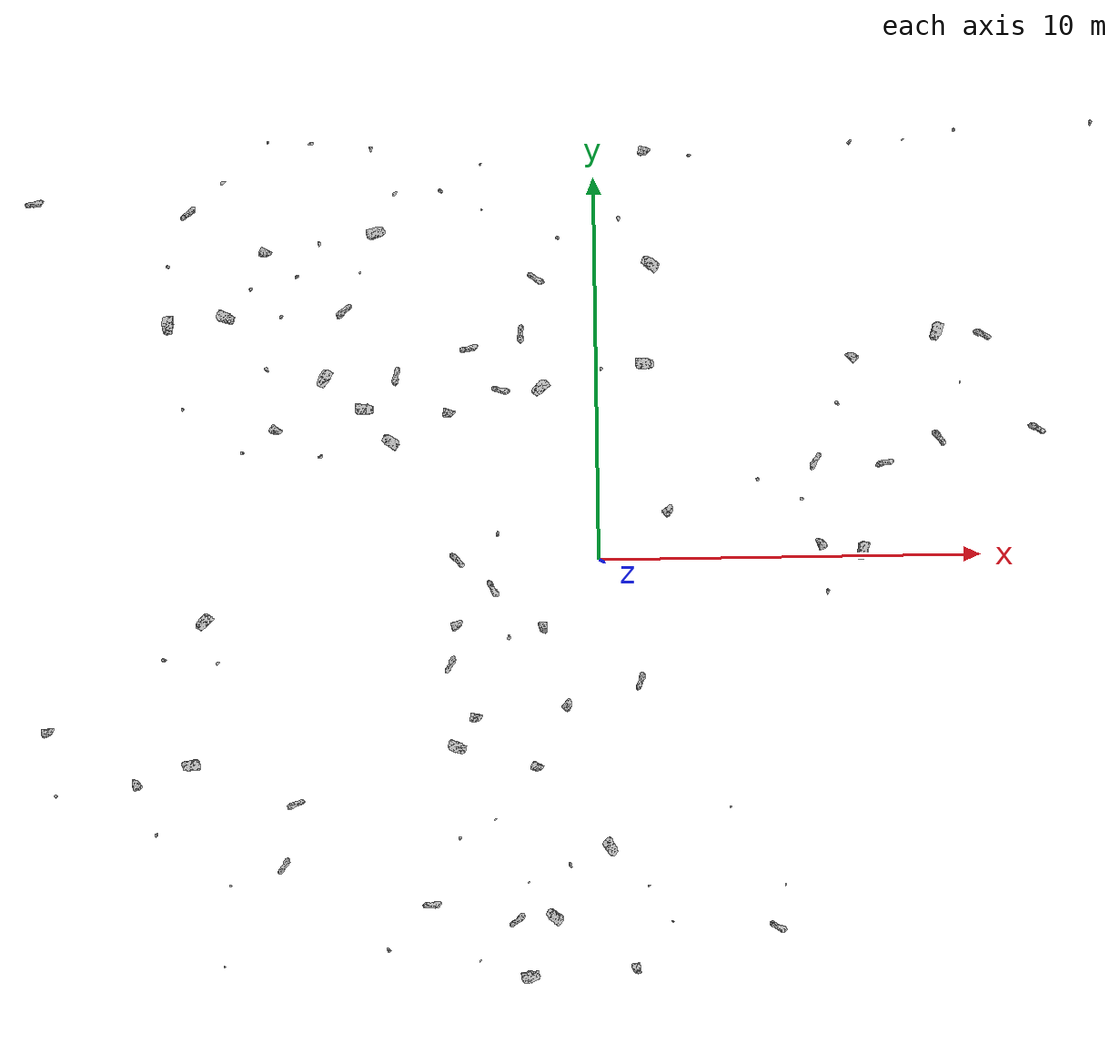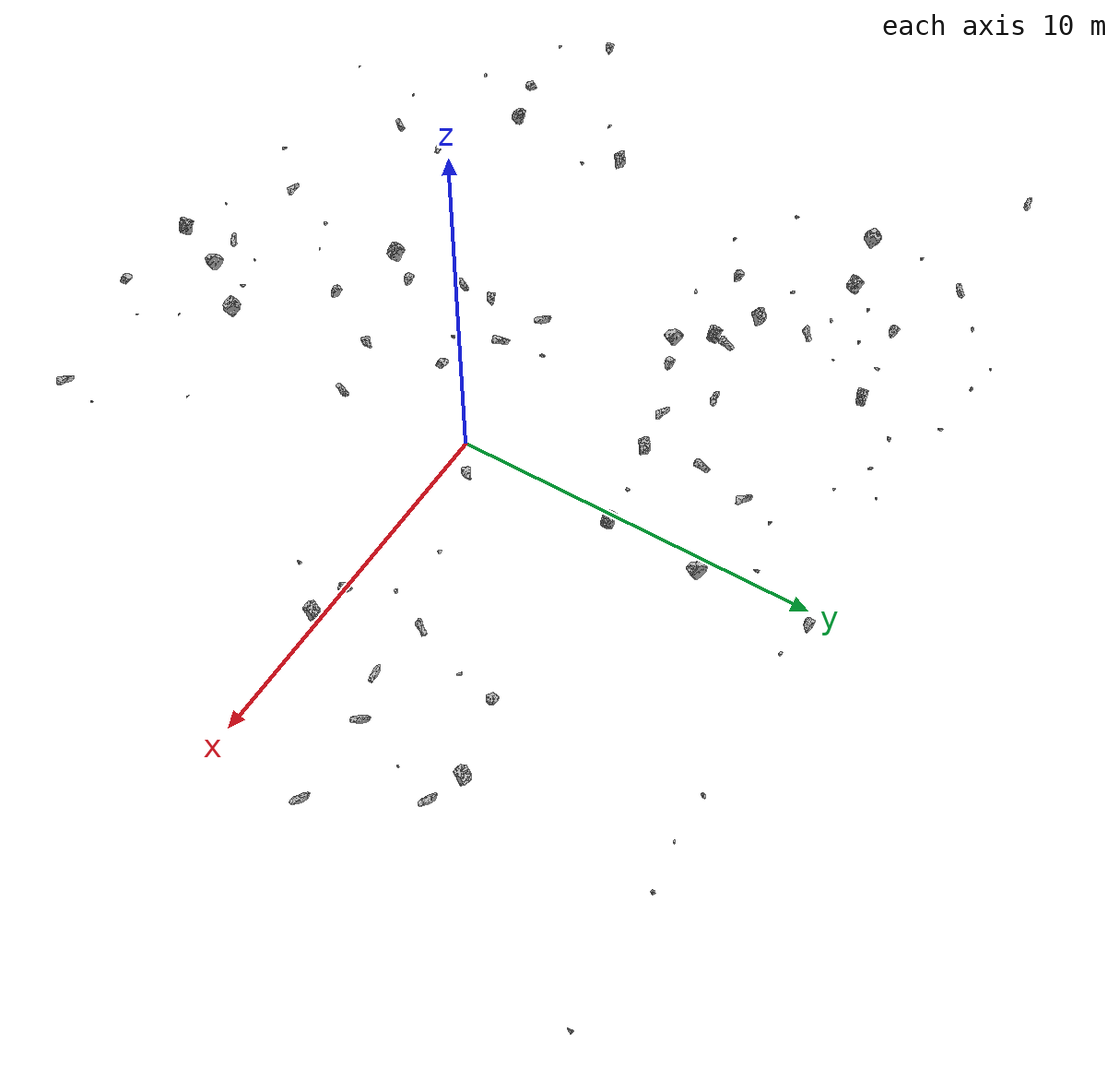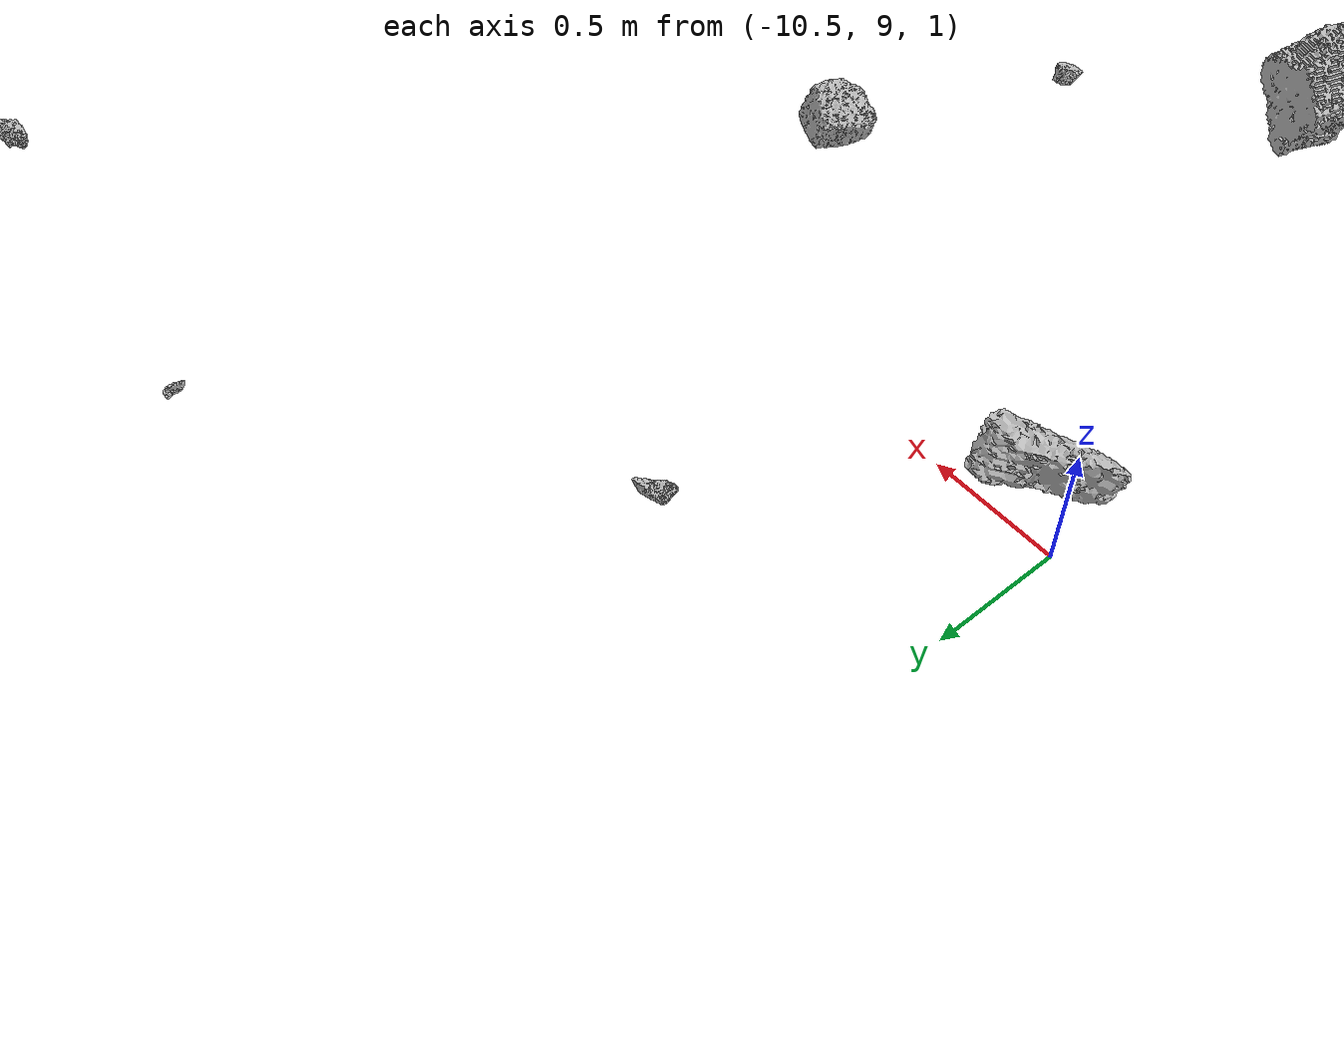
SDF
<sdf version="1.7">
 <world name="marsyard">
  <gravity>0 0 -9.81</gravity>
  <physics name="dart_physics" type="ignored">
   <max_step_size>0.003</max_step_size>
   <real_time_update_rate>333</real_time_update_rate>
   <real_time_factor>1.0</real_time_factor>
  </physics>
  <plugin filename="ignition-gazebo-physics-system" name="ignition::gazebo::systems::Physics"/>
  <plugin filename="ignition-gazebo-user-commands-system" name="ignition::gazebo::systems::UserCommands"/>
  <plugin filename="ignition-gazebo-scene-broadcaster-system" name="ignition::gazebo::systems::SceneBroadcaster"/>
  <plugin filename="ignition-gazebo-contact-system" name="ignition::gazebo::systems::Contact"/>
  <scene>
   <ambient>0.95 0.95 0.95 1</ambient>
   <background>0.70 0.70 0.70 1</background>
   <shadows>false</shadows>
  </scene>
  <light type="directional" name="sun">
   <cast_shadows>false</cast_shadows>
   <pose>0 0 30 0 0 0</pose>
   <diffuse>1 1 1 1</diffuse>
   <specular>0.15 0.15 0.15 1</specular>
   <direction>-0.35 0.1 -0.93</direction>
  </light>
  <model name="Rock_1">
   <static>true</static>
   <pose>2.4257 10.3441 1.6320 0.0000 0.0000 -0.1570</pose>
   <link name="link">
    <visual name="visual">
     <geometry><mesh><uri>package://rock_generator/rocks_ws/rock_9/meshes/rock_9.obj</uri></mesh></geometry>
    </visual>
    <collision name="collision">
     <geometry><mesh><uri>package://rock_generator/rocks_ws/rock_9/meshes/rock_9.obj</uri></mesh></geometry>
    </collision>
   </link>
  </model>
  <model name="Rock_2">
   <static>true</static>
   <pose>-4.4727 -8.9052 1.0947 0.0000 0.0000 0.0062</pose>
   <link name="link">
    <visual name="visual">
     <geometry><mesh><uri>package://rock_generator/rocks_ws/rock_4/meshes/rock_4.obj</uri></mesh></geometry>
    </visual>
   </link>
  </model>
  <model name="Rock_3">
   <static>true</static>
   <pose>-9.5837 9.8777 1.1695 0.0000 0.0000 0.4367</pose>
   <link name="link">
    <visual name="visual">
     <geometry><mesh><uri>package://rock_generator/rocks_ws/rock_6/meshes/rock_6.obj</uri></mesh></geometry>
    </visual>
   </link>
  </model>
  <model name="Rock_6">
   <static>true</static>
   <pose>6.5321 5.0921 0.9722 0.0000 0.0000 -0.8657</pose>
   <link name="link">
    <visual name="visual">
     <geometry><mesh><uri>package://rock_generator/rocks_ws/rock_3/meshes/rock_3.obj</uri></mesh></geometry>
    </visual>
    <collision name="collision">
     <geometry><mesh><uri>package://rock_generator/rocks_ws/rock_3/meshes/rock_3.obj</uri></mesh></geometry>
    </collision>
   </link>
  </model>
  <model name="Rock_9">
   <static>true</static>
   <pose>-14.2211 -5.9242 0.6756 0.0000 0.0000 -0.8550</pose>
   <link name="link">
    <visual name="visual">
     <geometry><mesh><uri>package://rock_generator/rocks_ws/rock_9/meshes/rock_9.obj</uri></mesh></geometry>
    </visual>
    <collision name="collision">
     <geometry><mesh><uri>package://rock_generator/rocks_ws/rock_9/meshes/rock_9.obj</uri></mesh></geometry>
    </collision>
   </link>
  </model>
  <model name="Rock_11">
   <static>true</static>
   <pose>-7.1282 8.2779 1.0099 0.0000 0.0000 -1.5279</pose>
   <link name="link">
    <visual name="visual">
     <geometry><mesh><uri>package://rock_generator/rocks_ws/rock_6/meshes/rock_6.obj</uri></mesh></geometry>
    </visual>
   </link>
  </model>
  <model name="Rock_12">
   <static>true</static>
   <pose>-6.4931 6.5172 1.9328 0.0000 0.0000 -2.5055</pose>
   <link name="link">
    <visual name="visual">
     <geometry><mesh><uri>package://rock_generator/rocks_ws/rock_4/meshes/rock_4.obj</uri></mesh></geometry>
    </visual>
   </link>
  </model>
  <model name="Rock_13">
   <static>true</static>
   <pose>-5.6198 8.3575 1.4505 0.0000 0.0000 0.3608</pose>
   <link name="link">
    <visual name="visual">
     <geometry><mesh><uri>package://rock_generator/rocks_ws/rock_1/meshes/rock_1.obj</uri></mesh></geometry>
    </visual>
    <collision name="collision">
     <geometry><mesh><uri>package://rock_generator/rocks_ws/rock_1/meshes/rock_1.obj</uri></mesh></geometry>
    </collision>
   </link>
  </model>
  <model name="Rock_14">
   <static>true</static>
   <pose>7.4172 2.4759 0.8900 0.0000 0.0000 -3.0515</pose>
   <link name="link">
    <visual name="visual">
     <geometry><mesh><uri>package://rock_generator/rocks_ws/rock_4/meshes/rock_4.obj</uri></mesh></geometry>
    </visual>
   </link>
  </model>
  <model name="Rock_16">
   <static>true</static>
   <pose>-11.5814 -6.9359 0.9860 0.0000 0.0000 0.9496</pose>
   <link name="link">
    <visual name="visual">
     <geometry><mesh><uri>package://rock_generator/rocks_ws/rock_9/meshes/rock_9.obj</uri></mesh></geometry>
    </visual>
    <collision name="collision">
     <geometry><mesh><uri>package://rock_generator/rocks_ws/rock_9/meshes/rock_9.obj</uri></mesh></geometry>
    </collision>
   </link>
  </model>
  <model name="Rock_17">
   <static>true</static>
   <pose>-2.0356 5.9063 0.8608 0.0000 0.0000 -1.7299</pose>
   <link name="link">
    <visual name="visual">
     <geometry><mesh><uri>package://rock_generator/rocks_ws/rock_4/meshes/rock_4.obj</uri></mesh></geometry>
    </visual>
   </link>
  </model>
  <model name="Rock_18">
   <static>true</static>
   <pose>8.8377 3.0587 1.3504 0.0000 0.0000 2.1583</pose>
   <link name="link">
    <visual name="visual">
     <geometry><mesh><uri>package://rock_generator/rocks_ws/rock_4/meshes/rock_4.obj</uri></mesh></geometry>
    </visual>
   </link>
  </model>
  <model name="Rock_19">
   <static>true</static>
   <pose>6.2372 3.9811 0.5872 0.0000 0.0000 -0.8442</pose>
   <link name="link">
    <visual name="visual">
     <geometry><mesh><uri>package://rock_generator/rocks_ws/rock_6/meshes/rock_6.obj</uri></mesh></geometry>
    </visual>
   </link>
  </model>
  <model name="Rock_21">
   <static>true</static>
   <pose>9.8889 5.6885 1.8319 0.0000 0.0000 2.6098</pose>
   <link name="link">
    <visual name="visual">
     <geometry><mesh><uri>package://rock_generator/rocks_ws/rock_4/meshes/rock_4.obj</uri></mesh></geometry>
    </visual>
   </link>
  </model>
  <model name="Rock_22">
   <static>true</static>
   <pose>-5.2780 3.2447 0.9200 0.0000 0.0000 2.6423</pose>
   <link name="link">
    <visual name="visual">
     <geometry><mesh><uri>package://rock_generator/rocks_ws/rock_1/meshes/rock_1.obj</uri></mesh></geometry>
    </visual>
    <collision name="collision">
     <geometry><mesh><uri>package://rock_generator/rocks_ws/rock_1/meshes/rock_1.obj</uri></mesh></geometry>
    </collision>
   </link>
  </model>
  <model name="Rock_23">
   <static>true</static>
   <pose>5.2496 1.5110 0.8970 0.0000 0.0000 2.6292</pose>
   <link name="link">
    <visual name="visual">
     <geometry><mesh><uri>package://rock_generator/rocks_ws/rock_9/meshes/rock_9.obj</uri></mesh></geometry>
    </visual>
    <collision name="collision">
     <geometry><mesh><uri>package://rock_generator/rocks_ws/rock_9/meshes/rock_9.obj</uri></mesh></geometry>
    </collision>
   </link>
  </model>
  <model name="Rock_25">
   <static>true</static>
   <pose>-10.9846 7.6973 1.4665 0.0000 0.0000 -0.5786</pose>
   <link name="link">
    <visual name="visual">
     <geometry><mesh><uri>package://rock_generator/rocks_ws/rock_9/meshes/rock_9.obj</uri></mesh></geometry>
    </visual>
    <collision name="collision">
     <geometry><mesh><uri>package://rock_generator/rocks_ws/rock_9/meshes/rock_9.obj</uri></mesh></geometry>
    </collision>
   </link>
  </model>
  <model name="Rock_27">
   <static>true</static>
   <pose>-3.2445 -3.9169 1.0968 0.0000 0.0000 2.9198</pose>
   <link name="link">
    <visual name="visual">
     <geometry><mesh><uri>package://rock_generator/rocks_ws/rock_3/meshes/rock_3.obj</uri></mesh></geometry>
    </visual>
    <collision name="collision">
     <geometry><mesh><uri>package://rock_generator/rocks_ws/rock_3/meshes/rock_3.obj</uri></mesh></geometry>
    </collision>
   </link>
  </model>
  <model name="Rock_28">
   <static>true</static>
   <pose>-1.5920 7.2551 0.9468 0.0000 0.0000 -0.6696</pose>
   <link name="link">
    <visual name="visual">
     <geometry><mesh><uri>package://rock_generator/rocks_ws/rock_4/meshes/rock_4.obj</uri></mesh></geometry>
    </visual>
   </link>
  </model>
  <model name="Rock_30">
   <static>true</static>
   <pose>-2.6257 0.7201 1.3635 0.0000 0.0000 1.5277</pose>
   <link name="link">
    <visual name="visual">
     <geometry><mesh><uri>package://rock_generator/rocks_ws/rock_6/meshes/rock_6.obj</uri></mesh></geometry>
    </visual>
   </link>
  </model>
  <model name="Rock_31">
   <static>true</static>
   <pose>-2.5174 4.3425 1.5160 0.0000 0.0000 -0.3469</pose>
   <link name="link">
    <visual name="visual">
     <geometry><mesh><uri>package://rock_generator/rocks_ws/rock_4/meshes/rock_4.obj</uri></mesh></geometry>
    </visual>
   </link>
  </model>
  <model name="Rock_32">
   <static>true</static>
   <pose>-9.6532 6.3034 0.9542 0.0000 0.0000 -0.2940</pose>
   <link name="link">
    <visual name="visual">
     <geometry><mesh><uri>package://rock_generator/rocks_ws/rock_1/meshes/rock_1.obj</uri></mesh></geometry>
    </visual>
    <collision name="collision">
     <geometry><mesh><uri>package://rock_generator/rocks_ws/rock_1/meshes/rock_1.obj</uri></mesh></geometry>
    </collision>
   </link>
  </model>
  <model name="Rock_33">
   <static>true</static>
   <pose>-9.9444 -2.5215 0.8364 0.0000 0.0000 0.8070</pose>
   <link name="link">
    <visual name="visual">
     <geometry><mesh><uri>package://rock_generator/rocks_ws/rock_9/meshes/rock_9.obj</uri></mesh></geometry>
    </visual>
    <collision name="collision">
     <geometry><mesh><uri>package://rock_generator/rocks_ws/rock_9/meshes/rock_9.obj</uri></mesh></geometry>
    </collision>
   </link>
  </model>
  <model name="Rock_35">
   <static>true</static>
   <pose>-2.7942 -6.6327 1.2713 0.0000 0.0000 -2.5951</pose>
   <link name="link">
    <visual name="visual">
     <geometry><mesh><uri>package://rock_generator/rocks_ws/rock_5/meshes/rock_5.obj</uri></mesh></geometry>
    </visual>
    <collision name="collision">
     <geometry><mesh><uri>package://rock_generator/rocks_ws/rock_5/meshes/rock_5.obj</uri></mesh></geometry>
    </collision>
   </link>
  </model>
  <model name="Rock_40">
   <static>true</static>
   <pose>-2.9288 9.1128 1.0307 0.0000 0.0000 -1.0810</pose>
   <link name="link">
    <visual name="visual">
     <geometry><mesh><uri>package://rock_generator/rocks_ws/rock_5/meshes/rock_5.obj</uri></mesh></geometry>
    </visual>
    <collision name="collision">
     <geometry><mesh><uri>package://rock_generator/rocks_ws/rock_5/meshes/rock_5.obj</uri></mesh></geometry>
    </collision>
   </link>
  </model>
  <model name="Rock_42">
   <static>true</static>
   <pose>6.6797 0.1925 0.9144 0.0000 0.0000 -1.6929</pose>
   <link name="link">
    <visual name="visual">
     <geometry><mesh><uri>package://rock_generator/rocks_ws/rock_1/meshes/rock_1.obj</uri></mesh></geometry>
    </visual>
    <collision name="collision">
     <geometry><mesh><uri>package://rock_generator/rocks_ws/rock_1/meshes/rock_1.obj</uri></mesh></geometry>
    </collision>
   </link>
  </model>
  <model name="Rock_43">
   <static>true</static>
   <pose>0.0381 -7.4446 1.1807 0.0000 0.0000 -0.9595</pose>
   <link name="link">
    <visual name="visual">
     <geometry><mesh><uri>package://rock_generator/rocks_ws/rock_1/meshes/rock_1.obj</uri></mesh></geometry>
    </visual>
    <collision name="collision">
     <geometry><mesh><uri>package://rock_generator/rocks_ws/rock_1/meshes/rock_1.obj</uri></mesh></geometry>
    </collision>
   </link>
  </model>
  <model name="Rock_44">
   <static>true</static>
   <pose>4.4132 -9.5854 1.1476 0.0000 0.0000 -0.5670</pose>
   <link name="link">
    <visual name="visual">
     <geometry><mesh><uri>package://rock_generator/rocks_ws/rock_4/meshes/rock_4.obj</uri></mesh></geometry>
    </visual>
   </link>
  </model>
  <model name="Rock_46">
   <static>true</static>
   <pose>-3.6216 0.1014 1.4196 0.0000 0.0000 2.2415</pose>
   <link name="link">
    <visual name="visual">
     <geometry><mesh><uri>package://rock_generator/rocks_ws/rock_4/meshes/rock_4.obj</uri></mesh></geometry>
    </visual>
   </link>
  </model>
  <model name="Rock_48">
   <static>true</static>
   <pose>-3.9716 9.5998 1.0824 0.0000 0.0000 -0.7165</pose>
   <link name="link">
    <visual name="visual">
     <geometry><mesh><uri>package://rock_generator/rocks_ws/rock_6/meshes/rock_6.obj</uri></mesh></geometry>
    </visual>
   </link>
  </model>
  <model name="Rock_50">
   <static>true</static>
   <pose>-3.8025 3.9182 1.7640 0.0000 0.0000 2.8820</pose>
   <link name="link">
    <visual name="visual">
     <geometry><mesh><uri>package://rock_generator/rocks_ws/rock_3/meshes/rock_3.obj</uri></mesh></geometry>
    </visual>
    <collision name="collision">
     <geometry><mesh><uri>package://rock_generator/rocks_ws/rock_3/meshes/rock_3.obj</uri></mesh></geometry>
    </collision>
   </link>
  </model>
  <model name="Rock_51">
   <static>true</static>
   <pose>1.4798 7.6707 1.6253 0.0000 0.0000 2.6137</pose>
   <link name="link">
    <visual name="visual">
     <geometry><mesh><uri>package://rock_generator/rocks_ws/rock_1/meshes/rock_1.obj</uri></mesh></geometry>
    </visual>
    <collision name="collision">
     <geometry><mesh><uri>package://rock_generator/rocks_ws/rock_1/meshes/rock_1.obj</uri></mesh></geometry>
    </collision>
   </link>
  </model>
  <model name="Rock_52">
   <static>true</static>
   <pose>3.2746 -6.4051 1.2206 0.0000 0.0000 2.7096</pose>
   <link name="link">
    <visual name="visual">
     <geometry><mesh><uri>package://rock_generator/rocks_ws/rock_5/meshes/rock_5.obj</uri></mesh></geometry>
    </visual>
    <collision name="collision">
     <geometry><mesh><uri>package://rock_generator/rocks_ws/rock_5/meshes/rock_5.obj</uri></mesh></geometry>
    </collision>
   </link>
  </model>
  <model name="Rock_54">
   <static>true</static>
   <pose>-10.6620 -5.0186 0.8563 0.0000 0.0000 -2.9575</pose>
   <link name="link">
    <visual name="visual">
     <geometry><mesh><uri>package://rock_generator/rocks_ws/rock_1/meshes/rock_1.obj</uri></mesh></geometry>
    </visual>
    <collision name="collision">
     <geometry><mesh><uri>package://rock_generator/rocks_ws/rock_1/meshes/rock_1.obj</uri></mesh></geometry>
    </collision>
   </link>
  </model>
  <model name="Rock_55">
   <static>true</static>
   <pose>-1.5413 4.5739 1.2550 0.0000 0.0000 -2.3227</pose>
   <link name="link">
    <visual name="visual">
     <geometry><mesh><uri>package://rock_generator/rocks_ws/rock_1/meshes/rock_1.obj</uri></mesh></geometry>
    </visual>
    <collision name="collision">
     <geometry><mesh><uri>package://rock_generator/rocks_ws/rock_1/meshes/rock_1.obj</uri></mesh></geometry>
    </collision>
   </link>
  </model>
  <model name="Rock_56">
   <static>true</static>
   <pose>-5.5990 -9.9674 1.2246 0.0000 0.0000 2.3063</pose>
   <link name="link">
    <visual name="visual">
     <geometry><mesh><uri>package://rock_generator/rocks_ws/rock_6/meshes/rock_6.obj</uri></mesh></geometry>
    </visual>
   </link>
  </model>
  <model name="Rock_58">
   <static>true</static>
   <pose>-3.2721 5.3874 1.9344 0.0000 0.0000 0.1188</pose>
   <link name="link">
    <visual name="visual">
     <geometry><mesh><uri>package://rock_generator/rocks_ws/rock_4/meshes/rock_4.obj</uri></mesh></geometry>
    </visual>
   </link>
  </model>
  <model name="Rock_59">
   <static>true</static>
   <pose>0.0993 4.9057 1.4982 0.0000 0.0000 -1.6406</pose>
   <link name="link">
    <visual name="visual">
     <geometry><mesh><uri>package://rock_generator/rocks_ws/rock_9/meshes/rock_9.obj</uri></mesh></geometry>
    </visual>
    <collision name="collision">
     <geometry><mesh><uri>package://rock_generator/rocks_ws/rock_9/meshes/rock_9.obj</uri></mesh></geometry>
    </collision>
   </link>
  </model>
  <model name="Rock_61">
   <static>true</static>
   <pose>5.6666 0.2988 0.7202 0.0000 0.0000 -1.2295</pose>
   <link name="link">
    <visual name="visual">
     <geometry><mesh><uri>package://rock_generator/rocks_ws/rock_3/meshes/rock_3.obj</uri></mesh></geometry>
    </visual>
    <collision name="collision">
     <geometry><mesh><uri>package://rock_generator/rocks_ws/rock_3/meshes/rock_3.obj</uri></mesh></geometry>
    </collision>
   </link>
  </model>
  <model name="Rock_62">
   <static>true</static>
   <pose>-7.7222 7.4472 1.0143 0.0000 0.0000 0.3855</pose>
   <link name="link">
    <visual name="visual">
     <geometry><mesh><uri>package://rock_generator/rocks_ws/rock_9/meshes/rock_9.obj</uri></mesh></geometry>
    </visual>
    <collision name="collision">
     <geometry><mesh><uri>package://rock_generator/rocks_ws/rock_9/meshes/rock_9.obj</uri></mesh></geometry>
    </collision>
   </link>
  </model>
  <model name="Rock_63">
   <static>true</static>
   <pose>-1.6603 -5.2023 1.3031 0.0000 0.0000 2.6156</pose>
   <link name="link">
    <visual name="visual">
     <geometry><mesh><uri>package://rock_generator/rocks_ws/rock_3/meshes/rock_3.obj</uri></mesh></geometry>
    </visual>
    <collision name="collision">
     <geometry><mesh><uri>package://rock_generator/rocks_ws/rock_3/meshes/rock_3.obj</uri></mesh></geometry>
    </collision>
   </link>
  </model>
  <model name="Rock_64">
   <static>true</static>
   <pose>-5.2198 4.8061 1.8154 0.0000 0.0000 -1.8524</pose>
   <link name="link">
    <visual name="visual">
     <geometry><mesh><uri>package://rock_generator/rocks_ws/rock_4/meshes/rock_4.obj</uri></mesh></geometry>
    </visual>
   </link>
  </model>
  <model name="Rock_66">
   <static>true</static>
   <pose>-8.1607 6.4267 0.8501 0.0000 0.0000 -2.4951</pose>
   <link name="link">
    <visual name="visual">
     <geometry><mesh><uri>package://rock_generator/rocks_ws/rock_9/meshes/rock_9.obj</uri></mesh></geometry>
    </visual>
    <collision name="collision">
     <geometry><mesh><uri>package://rock_generator/rocks_ws/rock_9/meshes/rock_9.obj</uri></mesh></geometry>
    </collision>
   </link>
  </model>
  <model name="Rock_68">
   <static>true</static>
   <pose>-5.7315 10.6537 1.4733 0.0000 0.0000 -1.4605</pose>
   <link name="link">
    <visual name="visual">
     <geometry><mesh><uri>package://rock_generator/rocks_ws/rock_6/meshes/rock_6.obj</uri></mesh></geometry>
    </visual>
   </link>
  </model>
  <model name="Rock_70">
   <static>true</static>
   <pose>4.0760 2.0120 1.4773 0.0000 0.0000 -1.0576</pose>
   <link name="link">
    <visual name="visual">
     <geometry><mesh><uri>package://rock_generator/rocks_ws/rock_9/meshes/rock_9.obj</uri></mesh></geometry>
    </visual>
    <collision name="collision">
     <geometry><mesh><uri>package://rock_generator/rocks_ws/rock_9/meshes/rock_9.obj</uri></mesh></geometry>
    </collision>
   </link>
  </model>
  <model name="Rock_72">
   <static>true</static>
   <pose>-3.7497 -1.5236 1.2554 0.0000 0.0000 -2.8567</pose>
   <link name="link">
    <visual name="visual">
     <geometry><mesh><uri>package://rock_generator/rocks_ws/rock_3/meshes/rock_3.obj</uri></mesh></geometry>
    </visual>
    <collision name="collision">
     <geometry><mesh><uri>package://rock_generator/rocks_ws/rock_3/meshes/rock_3.obj</uri></mesh></geometry>
    </collision>
   </link>
  </model>
  <model name="Rock_74">
   <static>true</static>
   <pose>-10.6834 4.0370 1.4081 0.0000 0.0000 -1.4717</pose>
   <link name="link">
    <visual name="visual">
     <geometry><mesh><uri>package://rock_generator/rocks_ws/rock_9/meshes/rock_9.obj</uri></mesh></geometry>
    </visual>
    <collision name="collision">
     <geometry><mesh><uri>package://rock_generator/rocks_ws/rock_9/meshes/rock_9.obj</uri></mesh></geometry>
    </collision>
   </link>
  </model>
  <model name="Rock_75">
   <static>true</static>
   <pose>-7.9545 -6.0983 1.2781 0.0000 0.0000 -2.8651</pose>
   <link name="link">
    <visual name="visual">
     <geometry><mesh><uri>package://rock_generator/rocks_ws/rock_4/meshes/rock_4.obj</uri></mesh></geometry>
    </visual>
   </link>
  </model>
  <model name="Rock_77">
   <static>true</static>
   <pose>5.8788 -0.8933 1.0587 0.0000 0.0000 -1.7312</pose>
   <link name="link">
    <visual name="visual">
     <geometry><mesh><uri>package://rock_generator/rocks_ws/rock_6/meshes/rock_6.obj</uri></mesh></geometry>
    </visual>
   </link>
  </model>
  <model name="Rock_78">
   <static>true</static>
   <pose>-8.3817 10.8845 1.3299 0.0000 0.0000 -1.6900</pose>
   <link name="link">
    <visual name="visual">
     <geometry><mesh><uri>package://rock_generator/rocks_ws/rock_5/meshes/rock_5.obj</uri></mesh></geometry>
    </visual>
    <collision name="collision">
     <geometry><mesh><uri>package://rock_generator/rocks_ws/rock_5/meshes/rock_5.obj</uri></mesh></geometry>
    </collision>
   </link>
  </model>
  <model name="Rock_79">
   <static>true</static>
   <pose>-14.3142 -4.1193 1.2870 0.0000 0.0000 -3.0842</pose>
   <link name="link">
    <visual name="visual">
     <geometry><mesh><uri>package://rock_generator/rocks_ws/rock_3/meshes/rock_3.obj</uri></mesh></geometry>
    </visual>
    <collision name="collision">
     <geometry><mesh><uri>package://rock_generator/rocks_ws/rock_3/meshes/rock_3.obj</uri></mesh></geometry>
    </collision>
   </link>
  </model>
  <model name="Rock_80">
   <static>true</static>
   <pose>1.2928 10.5875 1.4593 0.0000 0.0000 2.9385</pose>
   <link name="link">
    <visual name="visual">
     <geometry><mesh><uri>package://rock_generator/rocks_ws/rock_3/meshes/rock_3.obj</uri></mesh></geometry>
    </visual>
    <collision name="collision">
     <geometry><mesh><uri>package://rock_generator/rocks_ws/rock_3/meshes/rock_3.obj</uri></mesh></geometry>
    </collision>
   </link>
  </model>
  <model name="Rock_82">
   <static>true</static>
   <pose>-7.1406 4.8776 1.1011 0.0000 0.0000 -2.0209</pose>
   <link name="link">
    <visual name="visual">
     <geometry><mesh><uri>package://rock_generator/rocks_ws/rock_1/meshes/rock_1.obj</uri></mesh></geometry>
    </visual>
    <collision name="collision">
     <geometry><mesh><uri>package://rock_generator/rocks_ws/rock_1/meshes/rock_1.obj</uri></mesh></geometry>
    </collision>
   </link>
  </model>
  <model name="Rock_83">
   <static>true</static>
   <pose>-3.7223 -7.1170 1.2201 0.0000 0.0000 -1.4497</pose>
   <link name="link">
    <visual name="visual">
     <geometry><mesh><uri>package://rock_generator/rocks_ws/rock_9/meshes/rock_9.obj</uri></mesh></geometry>
    </visual>
    <collision name="collision">
     <geometry><mesh><uri>package://rock_generator/rocks_ws/rock_9/meshes/rock_9.obj</uri></mesh></geometry>
    </collision>
   </link>
  </model>
  <model name="Rock_84">
   <static>true</static>
   <pose>-0.9672 -3.6725 0.9245 0.0000 0.0000 -2.2914</pose>
   <link name="link">
    <visual name="visual">
     <geometry><mesh><uri>package://rock_generator/rocks_ws/rock_3/meshes/rock_3.obj</uri></mesh></geometry>
    </visual>
    <collision name="collision">
     <geometry><mesh><uri>package://rock_generator/rocks_ws/rock_3/meshes/rock_3.obj</uri></mesh></geometry>
    </collision>
   </link>
  </model>
  <model name="Rock_93">
   <static>true</static>
   <pose>-11.1489 6.2248 1.4044 0.0000 0.0000 -1.5130</pose>
   <link name="link">
    <visual name="visual">
     <geometry><mesh><uri>package://rock_generator/rocks_ws/rock_1/meshes/rock_1.obj</uri></mesh></geometry>
    </visual>
    <collision name="collision">
     <geometry><mesh><uri>package://rock_generator/rocks_ws/rock_1/meshes/rock_1.obj</uri></mesh></geometry>
    </collision>
   </link>
  </model>
  <model name="Rock_94">
   <static>true</static>
   <pose>0.8873 -10.5295 1.1201 0.0000 0.0000 1.7204</pose>
   <link name="link">
    <visual name="visual">
     <geometry><mesh><uri>package://rock_generator/rocks_ws/rock_3/meshes/rock_3.obj</uri></mesh></geometry>
    </visual>
    <collision name="collision">
     <geometry><mesh><uri>package://rock_generator/rocks_ws/rock_3/meshes/rock_3.obj</uri></mesh></geometry>
    </collision>
   </link>
  </model>
  <model name="Rock_95">
   <static>true</static>
   <pose>4.6697 -8.4434 1.1499 0.0000 0.0000 -1.3372</pose>
   <link name="link">
    <visual name="visual">
     <geometry><mesh><uri>package://rock_generator/rocks_ws/rock_5/meshes/rock_5.obj</uri></mesh></geometry>
    </visual>
    <collision name="collision">
     <geometry><mesh><uri>package://rock_generator/rocks_ws/rock_5/meshes/rock_5.obj</uri></mesh></geometry>
    </collision>
   </link>
  </model>
  <model name="Rock_102">
   <static>true</static>
   <pose>-7.2037 2.7915 0.8299 0.0000 0.0000 -2.7512</pose>
   <link name="link">
    <visual name="visual">
     <geometry><mesh><uri>package://rock_generator/rocks_ws/rock_6/meshes/rock_6.obj</uri></mesh></geometry>
    </visual>
   </link>
  </model>
  <model name="Rock_103">
   <static>true</static>
   <pose>1.7425 -9.3311 1.2667 0.0000 0.0000 2.5226</pose>
   <link name="link">
    <visual name="visual">
     <geometry><mesh><uri>package://rock_generator/rocks_ws/rock_5/meshes/rock_5.obj</uri></mesh></geometry>
    </visual>
    <collision name="collision">
     <geometry><mesh><uri>package://rock_generator/rocks_ws/rock_5/meshes/rock_5.obj</uri></mesh></geometry>
    </collision>
   </link>
  </model>
  <model name="Rock_104">
   <static>true</static>
   <pose>-2.9246 10.2190 1.4240 0.0000 0.0000 -2.4126</pose>
   <link name="link">
    <visual name="visual">
     <geometry><mesh><uri>package://rock_generator/rocks_ws/rock_5/meshes/rock_5.obj</uri></mesh></geometry>
    </visual>
    <collision name="collision">
     <geometry><mesh><uri>package://rock_generator/rocks_ws/rock_5/meshes/rock_5.obj</uri></mesh></geometry>
    </collision>
   </link>
  </model>
  <model name="Rock_105">
   <static>true</static>
   <pose>-14.3657 9.2832 1.6172 0.0000 0.0000 0.0890</pose>
   <link name="link">
    <visual name="visual">
     <geometry><mesh><uri>package://rock_generator/rocks_ws/rock_4/meshes/rock_4.obj</uri></mesh></geometry>
    </visual>
   </link>
  </model>
  <model name="Rock_108">
   <static>true</static>
   <pose>9.3281 4.4327 1.3581 0.0000 0.0000 -1.6776</pose>
   <link name="link">
    <visual name="visual">
     <geometry><mesh><uri>package://rock_generator/rocks_ws/rock_5/meshes/rock_5.obj</uri></mesh></geometry>
    </visual>
    <collision name="collision">
     <geometry><mesh><uri>package://rock_generator/rocks_ws/rock_5/meshes/rock_5.obj</uri></mesh></geometry>
    </collision>
   </link>
  </model>
  <model name="Rock_110">
   <static>true</static>
   <pose>5.5929 2.5273 0.5803 0.0000 0.0000 -2.2097</pose>
   <link name="link">
    <visual name="visual">
     <geometry><mesh><uri>package://rock_generator/rocks_ws/rock_4/meshes/rock_4.obj</uri></mesh></geometry>
    </visual>
   </link>
  </model>
  <model name="Rock_112">
   <static>true</static>
   <pose>-3.8431 -2.6800 1.0832 0.0000 0.0000 0.9863</pose>
   <link name="link">
    <visual name="visual">
     <geometry><mesh><uri>package://rock_generator/rocks_ws/rock_4/meshes/rock_4.obj</uri></mesh></geometry>
    </visual>
   </link>
  </model>
  <model name="Rock_120">
   <static>true</static>
   <pose>-3.2564 -10.3625 0.7186 0.0000 0.0000 -2.0839</pose>
   <link name="link">
    <visual name="visual">
     <geometry><mesh><uri>package://rock_generator/rocks_ws/rock_5/meshes/rock_5.obj</uri></mesh></geometry>
    </visual>
    <collision name="collision">
     <geometry><mesh><uri>package://rock_generator/rocks_ws/rock_5/meshes/rock_5.obj</uri></mesh></geometry>
    </collision>
   </link>
  </model>
  <model name="Rock_122">
   <static>true</static>
   <pose>-6.0688 3.8662 0.8561 0.0000 0.0000 0.0441</pose>
   <link name="link">
    <visual name="visual">
     <geometry><mesh><uri>package://rock_generator/rocks_ws/rock_1/meshes/rock_1.obj</uri></mesh></geometry>
    </visual>
    <collision name="collision">
     <geometry><mesh><uri>package://rock_generator/rocks_ws/rock_1/meshes/rock_1.obj</uri></mesh></geometry>
    </collision>
   </link>
  </model>
  <model name="Rock_123">
   <static>true</static>
   <pose>-1.3972 -1.7189 0.6937 0.0000 0.0000 1.5777</pose>
   <link name="link">
    <visual name="visual">
     <geometry><mesh><uri>package://rock_generator/rocks_ws/rock_3/meshes/rock_3.obj</uri></mesh></geometry>
    </visual>
    <collision name="collision">
     <geometry><mesh><uri>package://rock_generator/rocks_ws/rock_3/meshes/rock_3.obj</uri></mesh></geometry>
    </collision>
   </link>
  </model>
  <model name="Rock_124">
   <static>true</static>
   <pose>7.8952 10.6394 1.7508 0.0000 0.0000 -2.6694</pose>
   <link name="link">
    <visual name="visual">
     <geometry><mesh><uri>package://rock_generator/rocks_ws/rock_5/meshes/rock_5.obj</uri></mesh></geometry>
    </visual>
    <collision name="collision">
     <geometry><mesh><uri>package://rock_generator/rocks_ws/rock_5/meshes/rock_5.obj</uri></mesh></geometry>
    </collision>
   </link>
  </model>
  <model name="Rock_127">
   <static>true</static>
   <pose>-11.2728 -2.4004 1.2993 0.0000 0.0000 -0.2190</pose>
   <link name="link">
    <visual name="visual">
     <geometry><mesh><uri>package://rock_generator/rocks_ws/rock_6/meshes/rock_6.obj</uri></mesh></geometry>
    </visual>
   </link>
  </model>
  <model name="Rock_128">
   <static>true</static>
   <pose>-8.5591 5.0636 0.8578 0.0000 0.0000 -0.9460</pose>
   <link name="link">
    <visual name="visual">
     <geometry><mesh><uri>package://rock_generator/rocks_ws/rock_6/meshes/rock_6.obj</uri></mesh></geometry>
    </visual>
   </link>
  </model>
  <model name="Rock_129">
   <static>true</static>
   <pose>-0.9661 8.3101 1.3205 0.0000 0.0000 -0.5312</pose>
   <link name="link">
    <visual name="visual">
     <geometry><mesh><uri>package://rock_generator/rocks_ws/rock_9/meshes/rock_9.obj</uri></mesh></geometry>
    </visual>
    <collision name="collision">
     <geometry><mesh><uri>package://rock_generator/rocks_ws/rock_9/meshes/rock_9.obj</uri></mesh></geometry>
    </collision>
   </link>
  </model>
  <model name="Rock_130">
   <static>true</static>
   <pose>-2.8485 -0.7200 0.9906 0.0000 0.0000 -1.1545</pose>
   <link name="link">
    <visual name="visual">
     <geometry><mesh><uri>package://rock_generator/rocks_ws/rock_4/meshes/rock_4.obj</uri></mesh></geometry>
    </visual>
   </link>
  </model>
  <model name="Rock_131">
   <static>true</static>
   <pose>11.2782 3.2686 1.7150 0.0000 0.0000 2.5536</pose>
   <link name="link">
    <visual name="visual">
     <geometry><mesh><uri>package://rock_generator/rocks_ws/rock_4/meshes/rock_4.obj</uri></mesh></geometry>
    </visual>
   </link>
  </model>
  <model name="Rock_133">
   <static>true</static>
   <pose>0.5988 8.7616 1.5285 0.0000 0.0000 -1.4921</pose>
   <link name="link">
    <visual name="visual">
     <geometry><mesh><uri>package://rock_generator/rocks_ws/rock_6/meshes/rock_6.obj</uri></mesh></geometry>
    </visual>
   </link>
  </model>
  <model name="Rock_134">
   <static>true</static>
   <pose>-9.1742 2.8989 1.2388 0.0000 0.0000 0.0005</pose>
   <link name="link">
    <visual name="visual">
     <geometry><mesh><uri>package://rock_generator/rocks_ws/rock_9/meshes/rock_9.obj</uri></mesh></geometry>
    </visual>
    <collision name="collision">
     <geometry><mesh><uri>package://rock_generator/rocks_ws/rock_9/meshes/rock_9.obj</uri></mesh></geometry>
    </collision>
   </link>
  </model>
  <model name="Rock_135">
   <static>true</static>
   <pose>-0.8801 -7.8893 0.8283 0.0000 0.0000 -1.1688</pose>
   <link name="link">
    <visual name="visual">
     <geometry><mesh><uri>package://rock_generator/rocks_ws/rock_6/meshes/rock_6.obj</uri></mesh></geometry>
    </visual>
   </link>
  </model>
  <model name="Rock_137">
   <static>true</static>
   <pose>8.6245 5.8267 1.2754 0.0000 0.0000 -1.8159</pose>
   <link name="link">
    <visual name="visual">
     <geometry><mesh><uri>package://rock_generator/rocks_ws/rock_1/meshes/rock_1.obj</uri></mesh></geometry>
    </visual>
    <collision name="collision">
     <geometry><mesh><uri>package://rock_generator/rocks_ws/rock_1/meshes/rock_1.obj</uri></mesh></geometry>
    </collision>
   </link>
  </model>
  <model name="Rock_144">
   <static>true</static>
   <pose>-12.2096 -5.6821 0.7192 0.0000 0.0000 -1.3176</pose>
   <link name="link">
    <visual name="visual">
     <geometry><mesh><uri>package://rock_generator/rocks_ws/rock_3/meshes/rock_3.obj</uri></mesh></geometry>
    </visual>
    <collision name="collision">
     <geometry><mesh><uri>package://rock_generator/rocks_ws/rock_3/meshes/rock_3.obj</uri></mesh></geometry>
    </collision>
   </link>
  </model>
  <model name="Rock_145">
   <static>true</static>
   <pose>6.5446 10.6138 1.6457 0.0000 0.0000 1.0019</pose>
   <link name="link">
    <visual name="visual">
     <geometry><mesh><uri>package://rock_generator/rocks_ws/rock_6/meshes/rock_6.obj</uri></mesh></geometry>
    </visual>
   </link>
  </model>
  <model name="Rock_147">
   <static>true</static>
   <pose>-9.8520 -10.3714 1.0399 0.0000 0.0000 2.5034</pose>
   <link name="link">
    <visual name="visual">
     <geometry><mesh><uri>package://rock_generator/rocks_ws/rock_5/meshes/rock_5.obj</uri></mesh></geometry>
    </visual>
    <collision name="collision">
     <geometry><mesh><uri>package://rock_generator/rocks_ws/rock_5/meshes/rock_5.obj</uri></mesh></geometry>
    </collision>
   </link>
  </model>
  <model name="Rock_149">
   <static>true</static>
   <pose>-9.6793 -8.2753 0.9956 0.0000 0.0000 -0.2299</pose>
   <link name="link">
    <visual name="visual">
     <geometry><mesh><uri>package://rock_generator/rocks_ws/rock_5/meshes/rock_5.obj</uri></mesh></geometry>
    </visual>
    <collision name="collision">
     <geometry><mesh><uri>package://rock_generator/rocks_ws/rock_5/meshes/rock_5.obj</uri></mesh></geometry>
    </collision>
   </link>
  </model>
  <model name="Rock_150">
   <static>true</static>
   <pose>-7.2598 10.7940 1.6037 0.0000 0.0000 -2.9846</pose>
   <link name="link">
    <visual name="visual">
     <geometry><mesh><uri>package://rock_generator/rocks_ws/rock_6/meshes/rock_6.obj</uri></mesh></geometry>
    </visual>
   </link>
  </model>
  <model name="Rock_151">
   <static>true</static>
   <pose>-8.3001 3.5694 0.8297 0.0000 0.0000 2.5508</pose>
   <link name="link">
    <visual name="visual">
     <geometry><mesh><uri>package://rock_generator/rocks_ws/rock_3/meshes/rock_3.obj</uri></mesh></geometry>
    </visual>
    <collision name="collision">
     <geometry><mesh><uri>package://rock_generator/rocks_ws/rock_3/meshes/rock_3.obj</uri></mesh></geometry>
    </collision>
   </link>
  </model>
  <model name="Rock_152">
   <static>true</static>
   <pose>9.1862 10.8602 1.8807 0.0000 0.0000 1.3910</pose>
   <link name="link">
    <visual name="visual">
     <geometry><mesh><uri>package://rock_generator/rocks_ws/rock_9/meshes/rock_9.obj</uri></mesh></geometry>
    </visual>
    <collision name="collision">
     <geometry><mesh><uri>package://rock_generator/rocks_ws/rock_9/meshes/rock_9.obj</uri></mesh></geometry>
    </collision>
   </link>
  </model>
  <model name="Rock_154">
   <static>true</static>
   <pose>-5.1620 9.5626 0.9709 0.0000 0.0000 0.6603</pose>
   <link name="link">
    <visual name="visual">
     <geometry><mesh><uri>package://rock_generator/rocks_ws/rock_6/meshes/rock_6.obj</uri></mesh></geometry>
    </visual>
   </link>
  </model>
  <model name="Rock_155">
   <static>true</static>
   <pose>-2.2394 -9.3853 0.6747 0.0000 0.0000 0.5768</pose>
   <link name="link">
    <visual name="visual">
     <geometry><mesh><uri>package://rock_generator/rocks_ws/rock_4/meshes/rock_4.obj</uri></mesh></geometry>
    </visual>
   </link>
  </model>
  <model name="Rock_156">
   <static>true</static>
   <pose>-10.4066 9.0077 1.4764 0.0000 0.0000 0.5939</pose>
   <link name="link">
    <visual name="visual">
     <geometry><mesh><uri>package://rock_generator/rocks_ws/rock_4/meshes/rock_4.obj</uri></mesh></geometry>
    </visual>
   </link>
  </model>
  <model name="Rock_157">
   <static>true</static>
   <pose>-3.8147 -4.8642 1.3031 0.0000 0.0000 -0.2842</pose>
   <link name="link">
    <visual name="visual">
     <geometry><mesh><uri>package://rock_generator/rocks_ws/rock_1/meshes/rock_1.obj</uri></mesh></geometry>
    </visual>
    <collision name="collision">
     <geometry><mesh><uri>package://rock_generator/rocks_ws/rock_1/meshes/rock_1.obj</uri></mesh></geometry>
    </collision>
   </link>
  </model>
  <model name="Rock_158">
   <static>true</static>
   <pose>1.0678 -3.1579 1.2540 0.0000 0.0000 1.1454</pose>
   <link name="link">
    <visual name="visual">
     <geometry><mesh><uri>package://rock_generator/rocks_ws/rock_4/meshes/rock_4.obj</uri></mesh></geometry>
    </visual>
   </link>
  </model>
  <model name="Rock_160">
   <static>true</static>
   <pose>-8.2202 -7.8193 1.1229 0.0000 0.0000 0.8894</pose>
   <link name="link">
    <visual name="visual">
     <geometry><mesh><uri>package://rock_generator/rocks_ws/rock_4/meshes/rock_4.obj</uri></mesh></geometry>
    </visual>
   </link>
  </model>
  <model name="Rock_161">
   <static>true</static>
   <pose>-1.2050 -9.1429 0.6740 0.0000 0.0000 2.5383</pose>
   <link name="link">
    <visual name="visual">
     <geometry><mesh><uri>package://rock_generator/rocks_ws/rock_1/meshes/rock_1.obj</uri></mesh></geometry>
    </visual>
    <collision name="collision">
     <geometry><mesh><uri>package://rock_generator/rocks_ws/rock_1/meshes/rock_1.obj</uri></mesh></geometry>
    </collision>
   </link>
  </model>
  <model name="Rock_163">
   <static>true</static>
   <pose>-6.0273 7.4271 1.9226 0.0000 0.0000 1.5180</pose>
   <link name="link">
    <visual name="visual">
     <geometry><mesh><uri>package://rock_generator/rocks_ws/rock_5/meshes/rock_5.obj</uri></mesh></geometry>
    </visual>
    <collision name="collision">
     <geometry><mesh><uri>package://rock_generator/rocks_ws/rock_5/meshes/rock_5.obj</uri></mesh></geometry>
    </collision>
   </link>
  </model>
  <model name="Rock_165">
   <static>true</static>
   <pose>-8.9141 7.1381 1.0053 0.0000 0.0000 0.5907</pose>
   <link name="link">
    <visual name="visual">
     <geometry><mesh><uri>package://rock_generator/rocks_ws/rock_9/meshes/rock_9.obj</uri></mesh></geometry>
    </visual>
    <collision name="collision">
     <geometry><mesh><uri>package://rock_generator/rocks_ws/rock_9/meshes/rock_9.obj</uri></mesh></geometry>
    </collision>
   </link>
  </model>
  <model name="Rock_166">
   <static>true</static>
   <pose>1.1338 -8.4144 1.2174 0.0000 0.0000 -3.0792</pose>
   <link name="link">
    <visual name="visual">
     <geometry><mesh><uri>package://rock_generator/rocks_ws/rock_5/meshes/rock_5.obj</uri></mesh></geometry>
    </visual>
    <collision name="collision">
     <geometry><mesh><uri>package://rock_generator/rocks_ws/rock_5/meshes/rock_5.obj</uri></mesh></geometry>
    </collision>
   </link>
  </model>
  <model name="Rock_167">
   <static>true</static>
   <pose>-8.4984 8.1603 1.0310 0.0000 0.0000 2.7125</pose>
   <link name="link">
    <visual name="visual">
     <geometry><mesh><uri>package://rock_generator/rocks_ws/rock_3/meshes/rock_3.obj</uri></mesh></geometry>
    </visual>
    <collision name="collision">
     <geometry><mesh><uri>package://rock_generator/rocks_ws/rock_3/meshes/rock_3.obj</uri></mesh></geometry>
    </collision>
   </link>
  </model>
  <model name="Rock_168">
   <static>true</static>
   <pose>-2.3883 -1.9674 0.7742 0.0000 0.0000 1.4502</pose>
   <link name="link">
    <visual name="visual">
     <geometry><mesh><uri>package://rock_generator/rocks_ws/rock_6/meshes/rock_6.obj</uri></mesh></geometry>
    </visual>
   </link>
  </model>
  <model name="Rock_170">
   <static>true</static>
   <pose>-1.9549 -10.9124 0.6585 0.0000 0.0000 0.2481</pose>
   <link name="link">
    <visual name="visual">
     <geometry><mesh><uri>package://rock_generator/rocks_ws/rock_1/meshes/rock_1.obj</uri></mesh></geometry>
    </visual>
    <collision name="collision">
     <geometry><mesh><uri>package://rock_generator/rocks_ws/rock_1/meshes/rock_1.obj</uri></mesh></geometry>
    </collision>
   </link>
  </model>
  <model name="Rock_171">
   <static>true</static>
   <pose>1.6989 1.3235 1.4991 0.0000 0.0000 -2.4643</pose>
   <link name="link">
    <visual name="visual">
     <geometry><mesh><uri>package://rock_generator/rocks_ws/rock_3/meshes/rock_3.obj</uri></mesh></geometry>
    </visual>
    <collision name="collision">
     <geometry><mesh><uri>package://rock_generator/rocks_ws/rock_3/meshes/rock_3.obj</uri></mesh></geometry>
    </collision>
   </link>
  </model>
  <model name="Rock_172">
   <static>true</static>
   <pose>1.1927 4.8887 1.5913 0.0000 0.0000 0.0772</pose>
   <link name="link">
    <visual name="visual">
     <geometry><mesh><uri>package://rock_generator/rocks_ws/rock_1/meshes/rock_1.obj</uri></mesh></geometry>
    </visual>
    <collision name="collision">
     <geometry><mesh><uri>package://rock_generator/rocks_ws/rock_1/meshes/rock_1.obj</uri></mesh></geometry>
    </collision>
   </link>
  </model>
  <model name="Rock_173">
   <static>true</static>
   <pose>-1.9595 -8.3458 0.6568 0.0000 0.0000 -2.2690</pose>
   <link name="link">
    <visual name="visual">
     <geometry><mesh><uri>package://rock_generator/rocks_ws/rock_5/meshes/rock_5.obj</uri></mesh></geometry>
    </visual>
    <collision name="collision">
     <geometry><mesh><uri>package://rock_generator/rocks_ws/rock_5/meshes/rock_5.obj</uri></mesh></geometry>
    </collision>
   </link>
  </model>
  <model name="Rock_174">
   <static>true</static>
   <pose>-10.3021 -1.3344 1.2551 0.0000 0.0000 -2.2596</pose>
   <link name="link">
    <visual name="visual">
     <geometry><mesh><uri>package://rock_generator/rocks_ws/rock_1/meshes/rock_1.obj</uri></mesh></geometry>
    </visual>
    <collision name="collision">
     <geometry><mesh><uri>package://rock_generator/rocks_ws/rock_1/meshes/rock_1.obj</uri></mesh></geometry>
    </collision>
   </link>
  </model>
  <model name="Rock_175">
   <static>true</static>
   <pose>12.6598 10.9698 1.9949 0.0000 0.0000 -1.6967</pose>
   <link name="link">
    <visual name="visual">
     <geometry><mesh><uri>package://rock_generator/rocks_ws/rock_6/meshes/rock_6.obj</uri></mesh></geometry>
    </visual>
   </link>
  </model>
 </world>
</sdf>
